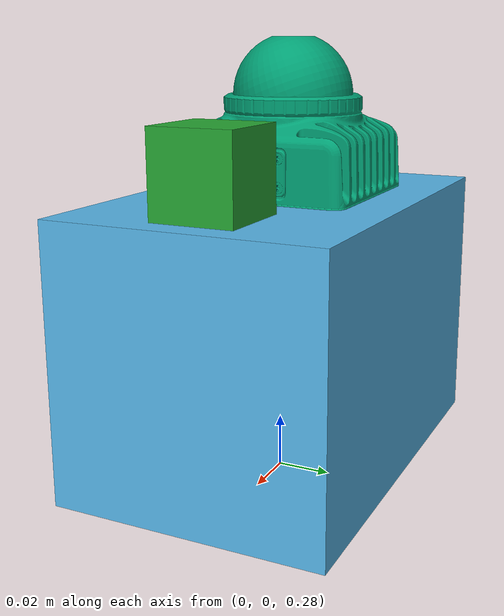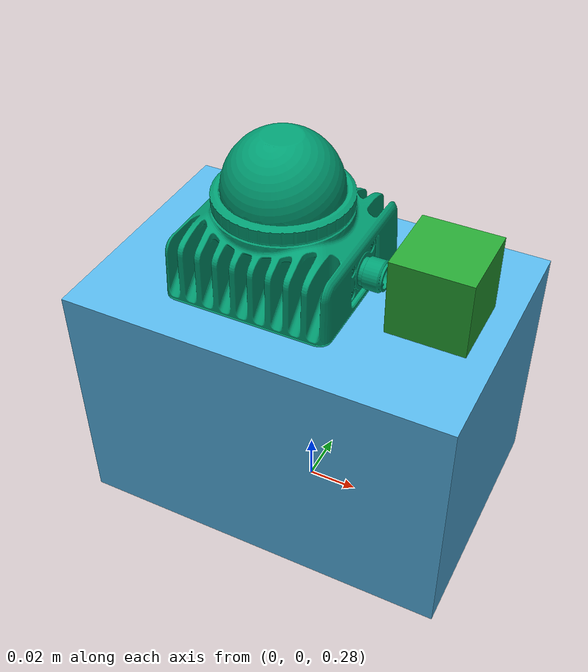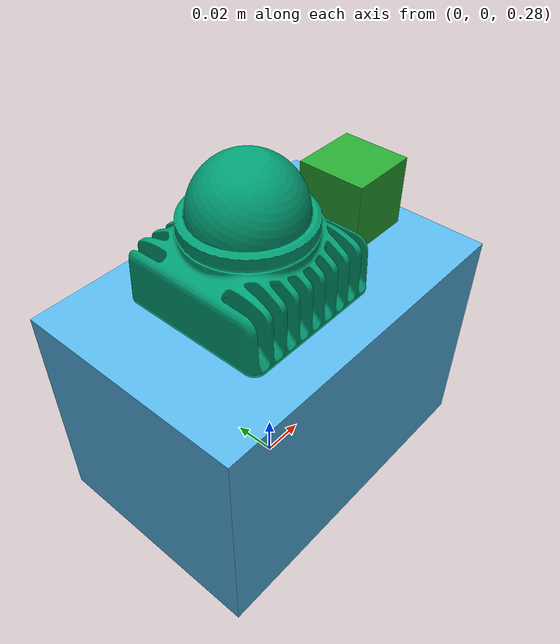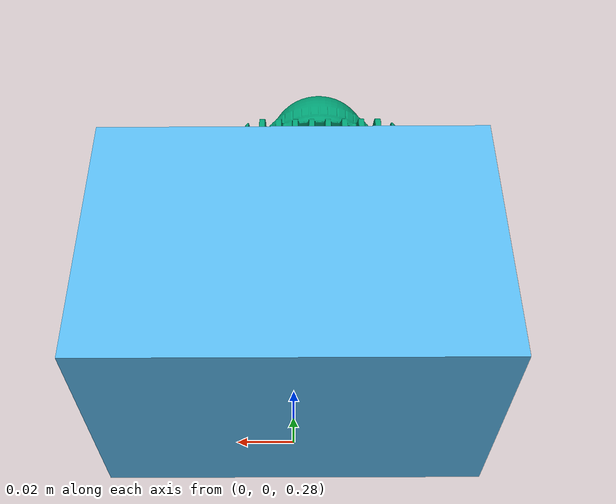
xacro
<?xml version="1.0"?>
<robot xmlns:xacro="http://www.ros.org/wiki/xacro" name="example">

  <!-- Base Footprint -->
<link name="base_link" />

  <xacro:macro name="LivoxMid360_IMU_Plantform" params="name:=mid360_imu_plantform parent_link_name:=base_link x:=0.0 y:=0.0 z:=0.3367 r:=0.0 p:=0.0 yaw:=0.0">

      <joint name="${name}_joint" type="fixed" >
        <parent link="${parent_link_name}" />
        <child link="link_platform" />
        <origin xyz="${x} ${y} ${z}" rpy="${r} ${p} ${yaw}" />
      </joint>

      <!-- link_platform -->
      <link name="link_platform" >
        <visual>
          <geometry>
            <box size="0.15 0.1 0.1" />
          </geometry>
        </visual>
        <collision>
          <geometry>
            <box size="0.15 0.1 0.1" />
          </geometry>
        </collision>

        <inertial>
          <origin xyz="0 0 0"/>
          <mass value="1.5"/>
          <inertia ixx="0.1" ixy="0.0" ixz="0.0"
                  iyy="0.1" iyz="0.0"
                  izz="0.1" />
        </inertial>

      </link>

      <gazebo reference="link_platform">
        <turnGravityOff>false</turnGravityOff>
      </gazebo>

      <joint name="lidar_platform_joint" type="fixed" >
        <parent link="link_platform" />
        <child link="livox_base" />
        <origin xyz="0 0 0.06" rpy="0 0 0" />
      </joint>

      <!--lidar -->
      <xacro:include filename="$(find livox_laser_simulation)/urdf/livox_mid360.xacro"/>
      <xacro:Livox_Mid40 name="livox"/>

        <!--imu -->
        <link name="imu_base_link">
            <visual>
            <origin xyz="0 0 0" rpy="0 0 0" />
            <geometry >
                <box size="0.03 0.03 0.03" />
            </geometry>
            </visual>
            <collision>
            <origin xyz="0 0 0" rpy="0 0 0" />
            <geometry >
                <box size="0.03 0.03 0.03" />
            </geometry>
            </collision>
            <inertial>
                <mass value="1.5"/>
                <inertia ixx="0.1" ixy="0.0" ixz="0.0" iyy="0.1" iyz="0.0" izz="0.1"/>
            </inertial>
        </link>

        <gazebo reference="imu_base_link">
            <material>Gazebo/Green</material>
            <turnGravityOff>false</turnGravityOff>
        </gazebo>

        <joint name="imu_platform_joint" type="fixed">
            <parent link="link_platform"/>
            <child link="imu_base_link"/>
            <origin xyz="0.05 0 0.065" rpy="0 0 0" />
            <axis xyz="0 0 1" />
        </joint>

        <gazebo reference="imu_base_link">
            <gravity>true</gravity>
            <sensor name="imu_sensor" type="imu">
                <always_on>true</always_on>
                <update_rate>200</update_rate>
                <visualize>true</visualize>
                <topic>/livox/imu</topic>
                <plugin filename="libgazebo_ros_imu_sensor.so" name="imu_plugin">
                    <topicName>/livox/imu</topicName>
                    <bodyName>imu_base_link</bodyName>
                    <updateRateHZ>200.0</updateRateHZ>
                    <gaussianNoise>0.00329</gaussianNoise>
                    <xyzOffset>0 0 0</xyzOffset>
                    <rpyOffset>0 0 0</rpyOffset>
                    <frameName>imu_base_link</frameName>
                </plugin>
                <pose>0 0 0 0 0 0</pose>
            </sensor>
        </gazebo>

  </xacro:macro>
<xacro:LivoxMid360_IMU_Plantform/>
</robot>

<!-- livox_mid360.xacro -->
<robot xmlns:xacro="http://ros.org/wiki/xacro">

  <xacro:property name="M_PI" value="3.14159"/>
  <xacro:property name="laser_min_range" value="0.1"/>
  <xacro:property name="laser_max_range" value="200.0"/>
  <xacro:property name="ros_topic" value="scan"/>
  <xacro:property name="samples" value="24000"/>
  <xacro:property name="downsample" value="1"/>

  <xacro:macro name="null_inertial">
    <inertial>
      <mass value="0.1"/>
    <inertia ixx="0.01" ixy="0" ixz="0"
          iyy="0.01" iyz="0"
          izz="0.01"/>
    </inertial>
  </xacro:macro>
  <xacro:macro name="Livox_Mid_gazebo_sensor" params="visualize:=True update_rate:=10 resolution:=0.002 noise_mean:=0.0 noise_stddev:=0.01 name:=livox">
    <gazebo reference="${name}">
      <sensor type="ray" name="laser_${name}">
        <pose>0 0 0 0 0 0</pose>
        <visualize>${visualize}</visualize>
        <update_rate>${update_rate}</update_rate>
        <!-- This ray plgin is only for visualization. -->
        <plugin name="gazebo_ros_laser_controller" filename="liblivox_laser_simulation.so">
			 <ray>
			  <scan>
				  <horizontal>
				    <samples>100</samples>
				    <resolution>1</resolution>
				    <min_angle>0</min_angle>
            			    <max_angle>${2*M_PI}</max_angle>
				  </horizontal>
				  <vertical>
				    <samples>360</samples>
				    <resolution>1</resolution>
				    <min_angle>${-3.22/180*M_PI}</min_angle>
           			    <max_angle>${56.22/180*M_PI}</max_angle>
				  </vertical>
			  </scan>
			  <range>
				  <min>0.1</min>
				  <max>30</max>
				  <resolution>0.02</resolution>
			  </range>
			  <noise>
				  <type>gaussian</type>
				  <mean>0.0</mean>
				  <stddev>0.0</stddev>
			  </noise>
			  </ray>
          <visualize>${visualize}</visualize>
		  <samples>${samples}</samples>
		  <downsample>${downsample}</downsample>
		  <csv_file_name>package://livox_laser_simulation/scan_mode/mid360.csv</csv_file_name>
		  <ros_topic>${ros_topic}</ros_topic>
        </plugin>
      </sensor>
    </gazebo>
  </xacro:macro>

  <xacro:macro name="Livox_Mid40" params="visualize:=True name:=livox">
    <link name="${name}_base">
      <xacro:null_inertial/>
      <visual>
        <origin xyz="0.00 0 0.0" rpy="0 0 0"/>
        <geometry>
          <mesh filename="package://livox_laser_simulation/meshes/mid360.dae">
          </mesh>
        </geometry>
      </visual>

      <collision>
		  <origin xyz="0 0 0" rpy="0 0 0" /> <geometry> <mesh
		  filename="package://livox_laser_simulation/meshes/mid360_rules.dae">
		  </mesh> </geometry>
      </collision>
    </link>
    <link name="${name}">
      <xacro:null_inertial/>
    </link>

    <joint name="${name}_to_${name}_base_joint" type="fixed">
      <parent link="${name}_base"/>
      <child link="${name}"/>
      <origin rpy="0 0 0" xyz="-0.012 0.0 0.047"/>
    </joint>
    <xacro:Livox_Mid_gazebo_sensor name="${name}" visualize="${visualize}"/>
  </xacro:macro>
    <!--xacro:Livox_Mid40 name="livox"/-->
</robot>
